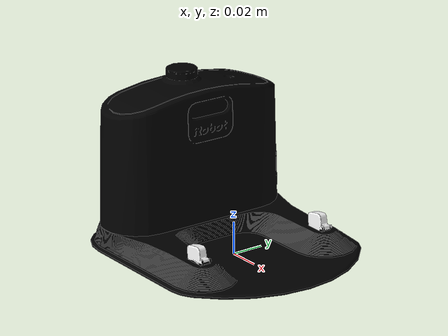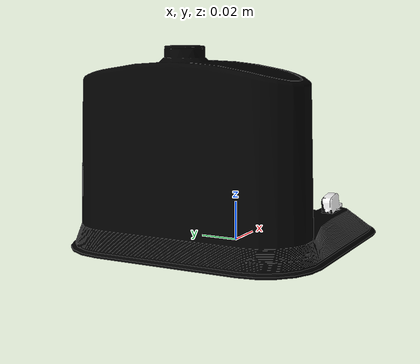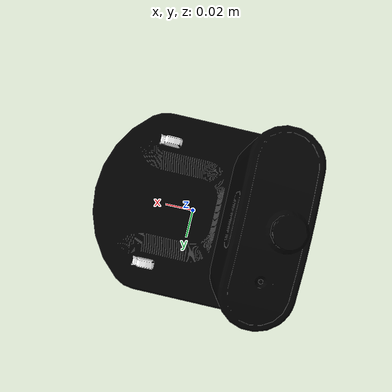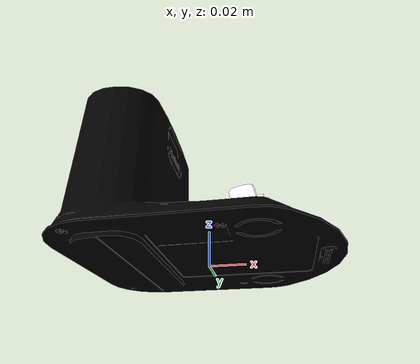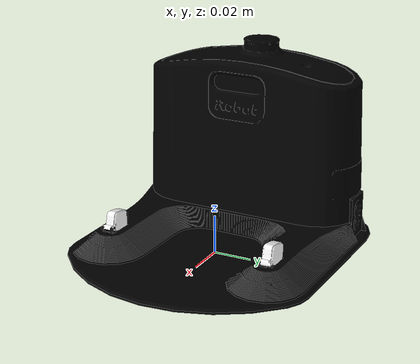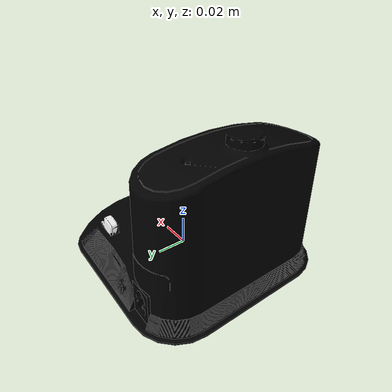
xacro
<?xml version="1.0"?>
<robot name="standard_dock" xmlns:xacro="http://ros.org/wiki/xacro">
  <xacro:include filename="$(find irobot_create_description)/urdf/common_properties.urdf.xacro"/>
  <xacro:include filename="$(find irobot_create_description)/urdf/dock/ir_emitter.urdf.xacro"/>

  <!-- Gazebo version -->
  <xacro:arg name="gazebo"         default="classic" />
  <xacro:arg name="namespace"      default="" />

  <xacro:property name="z_offset"  value="${4.6*mm2m}"/>
  <xacro:property name="link_name" value="std_dock_link"/>

  <xacro:arg name="visualize_rays" default="false"/>

  <link name="${link_name}">
    <visual>
      <origin xyz="0 0 ${z_offset}"/>
      <geometry>
        <mesh filename="package://irobot_create_description/meshes/dock/visual.dae"/>
      </geometry>
    </visual>
    <collision>
      <!-- Using a simple box as collision model -->
      <origin xyz="-0.045 0 0.05"/>
      <geometry>
        <box size="0.04 0.13 0.1"/>
      </geometry>
    </collision>
    <xacro:inertial_dummy />
  </link>

  <!-- Parameters for IR emitters -->
  <xacro:property name="buoy_x" value="${-6*cm2m}"/>
  <xacro:property name="buoy_z" value="${0.065 - z_offset}"/>

  <xacro:property name="halo_name"        value="halo"/>
  <xacro:property name="green_buoy_name"  value="green_buoy"/>
  <xacro:property name="red_buoy_name"    value="red_buoy"/>
  <xacro:property name="yellow_buoy_name" value="yellow_buoy"/>

  <xacro:property name="buoy_lateral_angle_yaw" value="${10*deg2rad}"/>
  <xacro:property name="buoy_lateral_aperture"  value="${30*deg2rad}"/>

  <!-- Green IR emitter -->
  <xacro:ir_emitter name="${green_buoy_name}"
                    parent="${link_name}"
                    gazebo="$(arg gazebo)"
                    aperture="${buoy_lateral_aperture}"
                    max_range="1.0"
                    visualize="$(arg visualize_rays)">
    <origin xyz="${buoy_x} 0 ${buoy_z}"
            rpy="0 0 ${- buoy_lateral_angle_yaw}"/>
  </xacro:ir_emitter>

  <!-- Red IR emitter -->
  <xacro:ir_emitter name="${red_buoy_name}"
                    parent="${link_name}"
                    gazebo="$(arg gazebo)"
                    aperture="${buoy_lateral_aperture}"
                    max_range="1.0"
                    visualize="$(arg visualize_rays)">
    <origin xyz="${buoy_x} 0 ${buoy_z}"
            rpy="0 0 ${buoy_lateral_angle_yaw}"/>
  </xacro:ir_emitter>

  <!-- Yellow IR emitter -->
  <xacro:ir_emitter name="${yellow_buoy_name}"
                    parent="${link_name}"
                    gazebo="$(arg gazebo)"
                    aperture="${10*deg2rad}"
                    max_range="1.0"
                    visualize="$(arg visualize_rays)">
    <origin xyz="${buoy_x} 0 ${buoy_z}"/>
  </xacro:ir_emitter>

  <!-- Halo IR emitter -->
  <xacro:ir_emitter name="${halo_name}"
                    parent="${link_name}"
                    gazebo="$(arg gazebo)"
                    aperture="360"
                    max_range="0.6096"
                    visualize="$(arg visualize_rays)">
    <origin xyz="${buoy_x} 0 ${0.095 - z_offset}"/>
  </xacro:ir_emitter>

  <xacro:if value="${'$(arg gazebo)' == 'classic'}">
    <gazebo>
      <static>true</static>
      <!-- Ground truth pose-->
      <plugin name="gazebo_ros_p3d_dock" filename="libgazebo_ros_p3d.so">
        <ros>
          <namespace>$(arg namespace)</namespace>
          <remapping>odom:=sim_ground_truth_dock_pose</remapping>
        </ros>
        <body_name>${link_name}</body_name>
        <frame_name>world</frame_name>
        <update_rate>1</update_rate>
        <xyz_offset>0 0 0</xyz_offset>
        <rpy_offset>0.0 0.0 0.0</rpy_offset>
        <gaussian_noise>0.0</gaussian_noise>
      </plugin>
    </gazebo>
  </xacro:if>

  <xacro:if value="${'$(arg gazebo)' == 'ignition'}">
    <gazebo>
      <static>true</static>
      <!-- Ground truth pose-->
      <plugin filename="libignition-gazebo-pose-publisher-system.so" name="ignition::gazebo::systems::PosePublisher">
        <publish_link_pose>true</publish_link_pose>
        <publish_nested_model_pose>true</publish_nested_model_pose>
        <use_pose_vector_msg>true</use_pose_vector_msg>
        <update_frequency>62</update_frequency>
      </plugin>
    </gazebo>
  </xacro:if>

</robot>

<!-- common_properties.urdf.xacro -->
<!-- Various useful macros -->
<robot name="xacro_properties" xmlns:xacro="http://ros.org/wiki/xacro">

  <xacro:macro name="inertial_cuboid_with_pose" params="mass x y z *origin">
    <inertial>
      <mass value="${mass}" />
      <xacro:insert_block name="origin"/>
      <inertia ixx="${(1/12) * mass * (y*y + z*z)}" ixy="0.0" ixz="0.0"
        iyy="${(1/12) * mass * (x*x + z*z)}" iyz="0.0"
        izz="${(1/12) * mass * (x*x + y*y)}" />
    </inertial>
  </xacro:macro>

  <xacro:macro name="inertial_cuboid" params="mass x y z">
    <xacro:inertial_cuboid_with_pose mass="${mass}" x="${x}" y="${y}" z="${z}">
      <origin xyz="0 0 0" />
    </xacro:inertial_cuboid_with_pose>
  </xacro:macro>

  <xacro:macro name="inertial_cylinder_with_pose" params="mass radius length *origin">
    <inertial>
      <xacro:insert_block name="origin"/>
      <mass value="${mass}" />
      <inertia ixx="${(1/12) * mass * (3*radius*radius + length*length)}" ixy="0.0" ixz="0.0"
        iyy="${(1/12) * mass * (3*radius*radius + length*length)}" iyz="0.0"
        izz="${(1/2) * mass * (radius*radius)}" />
    </inertial>
  </xacro:macro>

  <xacro:macro name="inertial_cylinder" params="mass radius length">
    <xacro:inertial_cylinder_with_pose mass="${mass}" radius="${radius}" length="${length}">
      <origin xyz="0 0 0" />
    </xacro:inertial_cylinder_with_pose>
  </xacro:macro>

  <xacro:macro name="inertial_sphere" params="mass radius">
    <inertial>
      <mass value="${mass}" />
      <inertia ixx="${(2/5) * mass * radius * radius}" ixy="0.0" ixz="0.0"
	             iyy="${(2/5) * mass * radius * radius}" iyz="0.0"
	             izz="${(2/5) * mass * radius * radius}" />
    </inertial>
  </xacro:macro>

  <xacro:macro name="inertial_dummy">
    <xacro:inertial_cuboid mass="0.01" x="0.01" y="0.01" z="0.01"/>
  </xacro:macro>

  <xacro:macro name="ray_sensor"
    params="sensor_name gazebo update_rate visualize
            h_samples h_res h_min_angle h_max_angle
            v_samples:=1 v_res:=1 v_min_angle:=0 v_max_angle:=0
            r_min r_max r_res *plugin">
    <!-- Classic -->
    <xacro:if value="${gazebo == 'classic'}">
      <sensor type="ray" name="${sensor_name}">
        <update_rate>${update_rate}</update_rate>
        <visualize>${visualize}</visualize>
        <always_on>true</always_on>
        <ray>
          <scan>
            <horizontal>
              <samples>${h_samples}</samples>
              <resolution>${h_res}</resolution>
              <min_angle>${h_min_angle}</min_angle>
              <max_angle>${h_max_angle}</max_angle>
            </horizontal>
            <vertical>
              <samples>${v_samples}</samples>
              <resolution>${v_res}</resolution>
              <min_angle>${v_min_angle}</min_angle>
              <max_angle>${v_max_angle}</max_angle>
            </vertical>
          </scan>
          <range>
            <min>${r_min}</min>
            <max>${r_max}</max>
            <resolution>${r_res}</resolution>
          </range>
        </ray>
        <!-- Noise is currently disabled -->
        <noise>
          <type>gaussian</type>
          <mean>0.0</mean>
          <stddev>0.0</stddev>
        </noise>
        <xacro:insert_block name="plugin"/>
      </sensor>
    </xacro:if>

    <!-- Ignition -->
    <xacro:if value="${gazebo == 'ignition'}">
      <sensor name="${sensor_name}" type="gpu_lidar">
        <update_rate>${update_rate}</update_rate>
        <visualize>${visualize}</visualize>
        <always_on>true</always_on>
        <lidar>
          <scan>
            <horizontal>
              <samples>${h_samples}</samples>
              <resolution>${h_res}</resolution>
              <min_angle>${h_min_angle}</min_angle>
              <max_angle>${h_max_angle}</max_angle>
            </horizontal>
            <vertical>
              <samples>${v_samples}</samples>
              <resolution>${v_res}</resolution>
              <min_angle>${v_min_angle}</min_angle>
              <max_angle>${v_max_angle}</max_angle>
            </vertical>
          </scan>
          <range>
            <min>${r_min}</min>
            <max>${r_max}</max>
            <resolution>${r_res}</resolution>
          </range>
        </lidar>
      </sensor>
    </xacro:if>
  </xacro:macro>

  <!-- Conversion macros -->
  <xacro:property name="cm2m"    value="${1/100.0}"/>
  <xacro:property name="mm2m"    value="${1/1000.0}"/>
  <xacro:property name="in2m"    value="0.0254"/>
  <xacro:property name="deg2rad" value="${pi/180.0}"/>

  <!-- Material colors -->
  <xacro:property name="material_black">
    <material name="black">
      <color rgba="0.1 0.1 0.1 1"/>
    </material>
  </xacro:property>

  <!-- Material macros -->
  <xacro:macro name="material_black">
    <visual>
      <material>
        <diffuse>0 0 0 1</diffuse>
        <specular>${80/255} ${80/255} ${80/255} 1</specular>
        <emissive>0 0 0 1</emissive>
      </material>
    </visual>
  </xacro:macro>

  <xacro:macro name="material_darkgray">
    <visual>
      <material>
        <diffuse>${3/255} ${3/255} ${3/255} 1</diffuse>
        <specular>0 0 0 1</specular>
        <emissive>0 0 0 1</emissive>
      </material>
    </visual>
  </xacro:macro>

</robot>

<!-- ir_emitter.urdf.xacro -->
<robot xmlns:xacro="http://ros.org/wiki/xacro">
  <xacro:macro name="ir_emitter" params="name parent:=base_link *origin
                                         gazebo
                                         max_range
                                         aperture
                                         update_rate:=1.0
                                         min_range:=${7*cm2m}
                                         visualize:=false" >

    <!-- Physical link properties -->
    <xacro:property name="mass" value="0.15" />
    <xacro:property name="x"    value="0.014" />
    <xacro:property name="y"    value="0.02" />
    <xacro:property name="z"    value="0.008" />

    <joint name="${name}_joint" type="fixed">
      <xacro:insert_block name="origin" />
      <parent link="${parent}"/>
      <child link="${name}_link"/>
    </joint>

    <link name="${name}_link">
      <xacro:inertial_cuboid mass="${mass}" x="${x}" y="${y}" z="${z}" />
    </link>

    <!-- This ray is not attached to any plugin, it is only used for aesthetic and debugging purposes
    only when the visualize flag is set. No need for high update rates. -->
    <xacro:if value="${visualize}">
      <gazebo reference="${name}_link">
        <xacro:ray_sensor sensor_name="${name}" gazebo="${gazebo}"
                      update_rate="${update_rate}" visualize="${visualize}"
                      h_samples="50" h_res="1.0" h_min_angle="-${aperture/2}" h_max_angle="${aperture/2}"
                      r_min="${min_range}" r_max="${max_range}" r_res="0.01">
                      <plugin name="dummy" filename="dummyfile"></plugin>
        </xacro:ray_sensor>
      </gazebo>
    </xacro:if>

    <gazebo reference="${name}_joint" >
      <preserveFixedJoint>true</preserveFixedJoint>
    </gazebo>

  </xacro:macro>
</robot>
